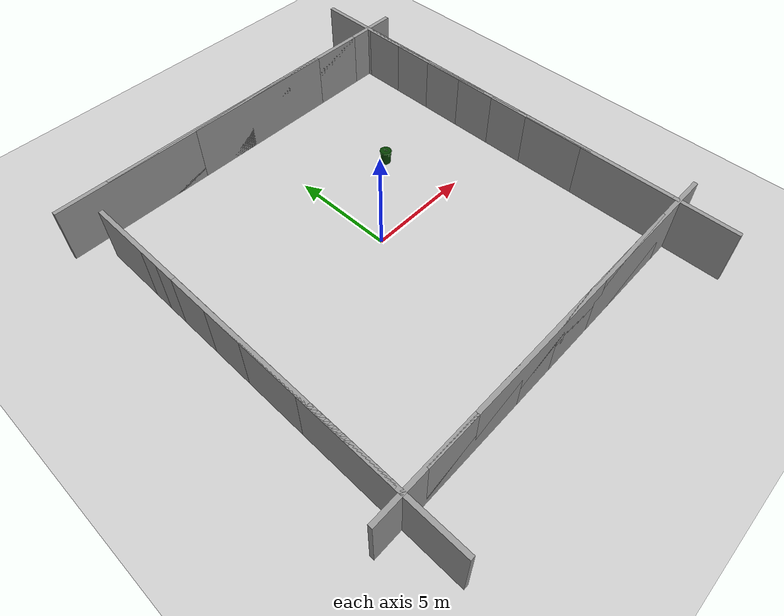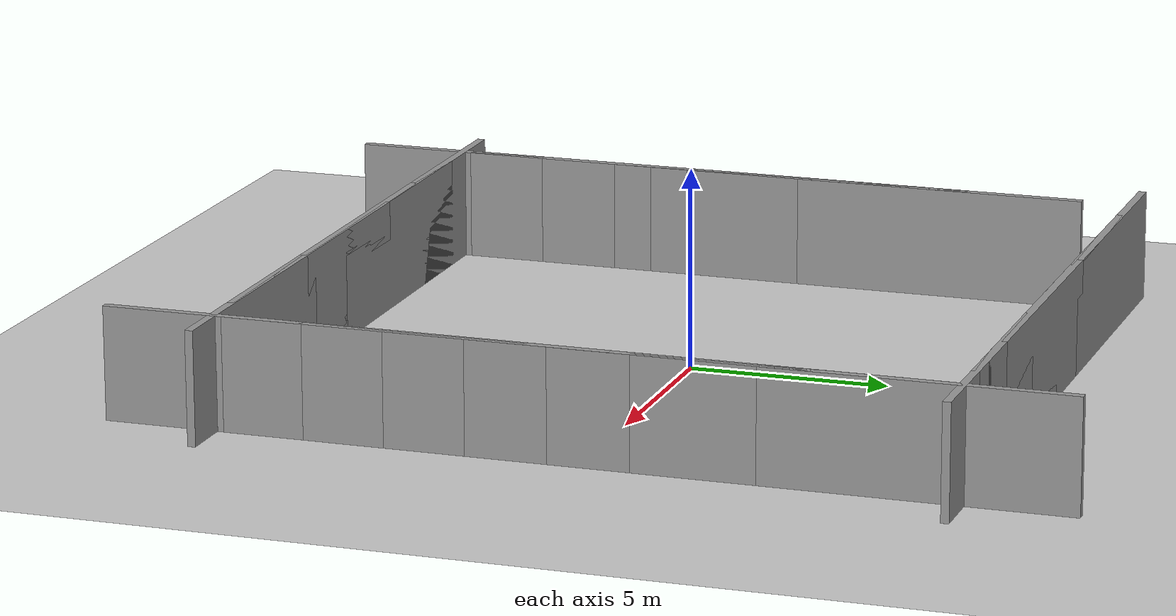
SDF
<sdf version="1.5">
 <world name="default">
  <include><uri>model://sun</uri></include>
  <include><uri>model://ground_plane</uri></include>
  <include><uri>model://asphalt_plane</uri></include>
  <physics name="default_physics" default="0" type="ode">
   <gravity>0 0 -9.8066</gravity>
   <ode>
    <solver>
     <type>quick</type>
     <iters>10</iters>
     <sor>1.3</sor>
     <use_dynamic_moi_rescaling>0</use_dynamic_moi_rescaling>
    </solver>
    <constraints>
     <cfm>0</cfm>
     <erp>0.2</erp>
     <contact_max_correcting_vel>100</contact_max_correcting_vel>
     <contact_surface_layer>0.001</contact_surface_layer>
    </constraints>
   </ode>
   <max_step_size>0.002</max_step_size>
   <real_time_factor>1</real_time_factor>
   <real_time_update_rate>500</real_time_update_rate>
   <magnetic_field>6e-06 2.3e-05 -4.2e-05</magnetic_field>
  </physics>
  <include>
   <name>first_2015_trash_can</name>
   <uri>model://first_2015_trash_can</uri>
   <pose>3.8239 3.403029 0 0 -0 0</pose>
  </include>
  <include><name>grey_wall</name><uri>model://grey_wall</uri><pose>-8.34545 0 0 0 0 -1.57</pose></include>
  <include><name>grey_wall2</name><uri>model://grey_wall</uri><pose>-3.5 9 0 0 0 0</pose></include>
  <include><name>grey_wall3</name><uri>model://grey_wall</uri><pose>-8.34545 -1 0 0 0 -1.57</pose></include>
  <include><name>grey_wall4</name><uri>model://grey_wall</uri><pose>-8.34545 -3 0 0 0 -1.57</pose></include>
  <include><name>grey_wall5</name><uri>model://grey_wall</uri><pose>-8.34545 -5 0 0 0 -1.57</pose></include>
  <include><name>grey_wall6</name><uri>model://grey_wall</uri><pose>-8.34545 -8 0 0 0 -1.57</pose></include>
  <include><name>grey_wall7</name><uri>model://grey_wall</uri><pose>-8.34545 1 0 0 0 -1.57</pose></include>
  <include><name>grey_wall8</name><uri>model://grey_wall</uri><pose>-8.34545 4 0 0 0 -1.57</pose></include>
  <include><name>grey_wall9</name><uri>model://grey_wall</uri><pose>8.34545 -8 0 0 0 -1.57</pose></include>
  <include><name>grey_wall10</name><uri>model://grey_wall</uri><pose>8.34545 -5 0 0 0 -1.57</pose></include>
  <include><name>grey_wall11</name><uri>model://grey_wall</uri><pose>8.34545 -3 0 0 0 -1.57</pose></include>
  <include><name>grey_wall12</name><uri>model://grey_wall</uri><pose>8.34545 -1 0 0 0 -1.57</pose></include>
  <include><name>grey_wall13</name><uri>model://grey_wall</uri><pose>8.34545 8 0 0 0 -1.57</pose></include>
  <include><name>grey_wall14</name><uri>model://grey_wall</uri><pose>8.34545 5 0 0 0 -1.57</pose></include>
  <include><name>grey_wall15</name><uri>model://grey_wall</uri><pose>8.3454 3 0 0 0 -1.57</pose></include>
  <include><name>grey_wall16</name><uri>model://grey_wall</uri><pose>8.34545 1 0 0 0 -1.57</pose></include>
  <include><name>grey_wall17</name><uri>model://grey_wall</uri><pose>-6.0 9 0 0 0 0</pose></include>
  <include><name>grey_wall18</name><uri>model://grey_wall</uri><pose>-1 9 0 0 0 0</pose></include>
  <include><name>grey_wall19</name><uri>model://grey_wall</uri><pose>1 9 0 0 0 0</pose></include>
  <include><name>grey_wall20</name><uri>model://grey_wall</uri><pose>3.5 9 0 0 0 0</pose></include>
  <include><name>grey_wall21</name><uri>model://grey_wall</uri><pose>6.0 9 0 0 0 0</pose></include>
  <include><name>grey_wall22</name><uri>model://grey_wall</uri><pose>-6.0 -9 0 0 0 0</pose></include>
  <include><name>grey_wall23</name><uri>model://grey_wall</uri><pose>-1 -9 0 0 0 0</pose></include>
  <include><name>grey_wall24</name><uri>model://grey_wall</uri><pose>1 -9 0 0 0 0</pose></include>
  <include><name>grey_wall25</name><uri>model://grey_wall</uri><pose>3.5 -9 0 0 0 0</pose></include>
  <include><name>grey_wall26</name><uri>model://grey_wall</uri><pose>6.0 -9 0 0 0 0</pose></include>
  <include><name>grey_wall27</name><uri>model://grey_wall</uri><pose>-3.5 -9 0 0 0 0</pose></include>
 </world>
</sdf>

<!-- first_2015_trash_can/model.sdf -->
<sdf version="1.5">
  <model name="first_2015_trash_can">
    <link name="link">
      <inertial>
        <pose>0 0 0.3683 0 0 0</pose>
        <mass>4.83076</mass>
        <inertia>
          <ixx>0.281534052</ixx>
          <ixy>0</ixy>
          <ixz>0</ixz>
          <iyy>0.281534052</iyy>
          <iyz>0</iyz>
          <izz>0.126222831</izz>
        </inertia>
      </inertial>

      <visual name="visual">
        <geometry>
          <mesh>
            <uri>model://first_2015_trash_can/meshes/trash_can.dae</uri>
          </mesh>
        </geometry>
      </visual>

      <collision name="collision">
        <geometry>
          <mesh>
            <uri>model://first_2015_trash_can/meshes/trash_can.dae</uri>
          </mesh>
        </geometry>
      </collision>
    </link>
  </model>
</sdf>

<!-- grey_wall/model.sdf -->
<sdf version="1.5">
  <model name="grey_wall">
    <static>true</static>
    <link name="link">
      <pose>0 0 1.4 0 0 0</pose>
      <collision name="collision">
        <geometry>
          <box>
            <size>7.5 0.2 2.8</size>
          </box>
        </geometry>
      </collision>
      <visual name="visual">
        <cast_shadows>false</cast_shadows>
        <geometry>
          <box>
            <size>7.5 0.2 2.8</size>
          </box>
        </geometry>
        <material>
          <script>
            <uri>model://grey_wall/materials/scripts</uri>
            <uri>model://grey_wall/materials/textures</uri>
            <name>vrc/grey_wall</name>
          </script>
        </material>
      </visual>
    </link>
  </model>
</sdf>
